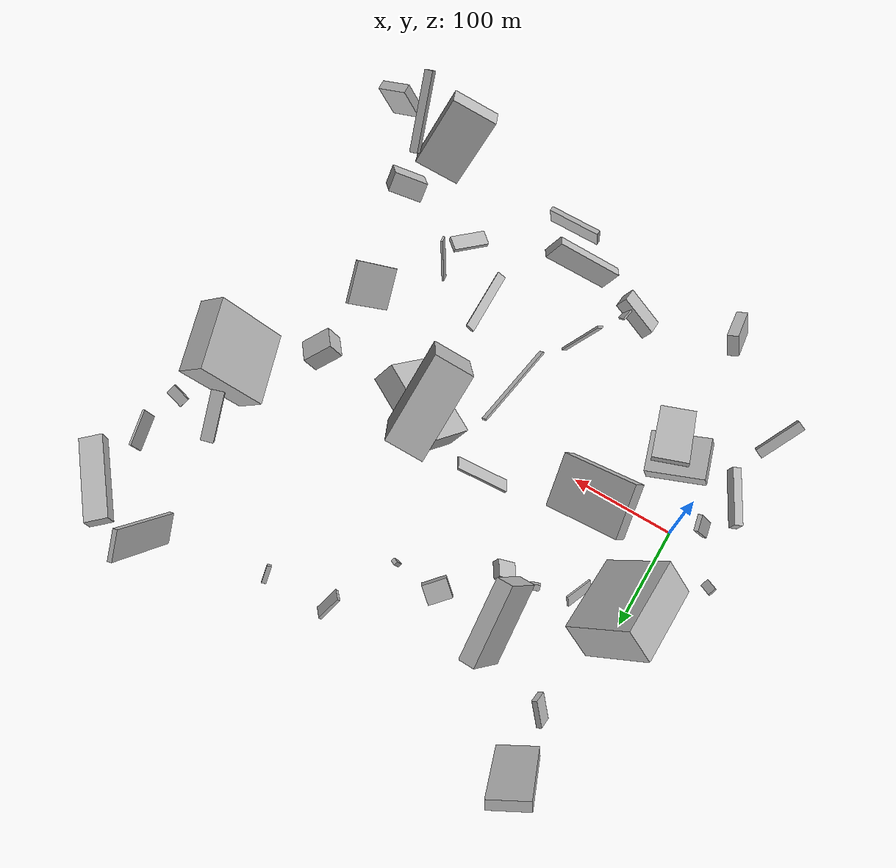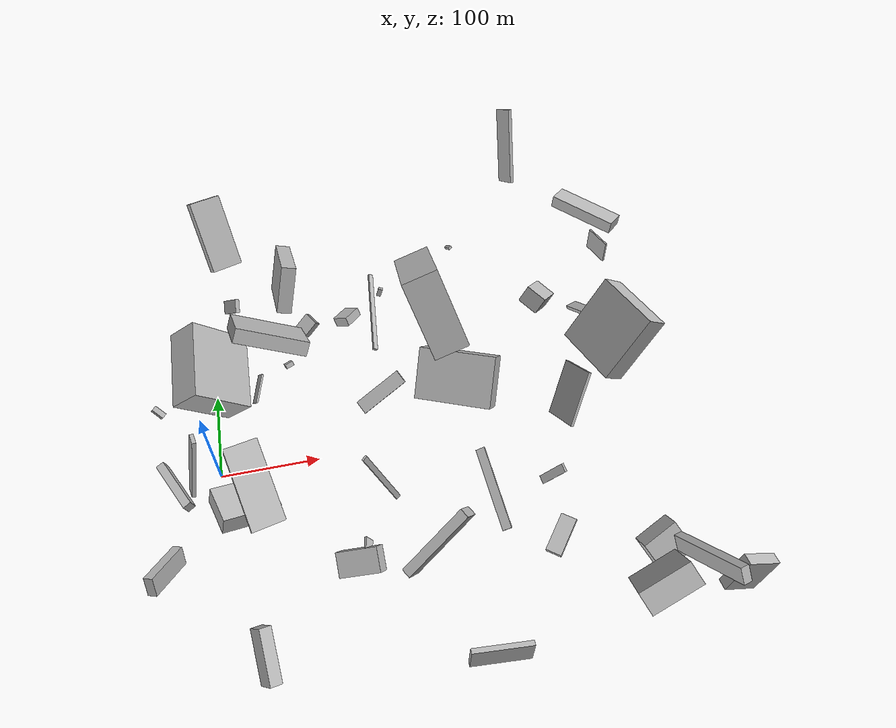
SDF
<sdf version="1.6">
 <world name="default">
  <scene>
   <sky><clouds><speed>12</speed></clouds></sky>
   <ambient>0.4 0.4 0.4 1</ambient>
   <background>0.7 0.7 0.7 1</background>
   <shadows>1</shadows>
  </scene>
  <gravity>0 0 -9.8066</gravity>
  <magnetic_field>6e-06 2.3e-05 -4.2e-05</magnetic_field>
  <physics default="0" name="default_physics" type="ode">
   <ode>
    <solver>
     <type>quick</type>
     <iters>10</iters>
     <sor>1.0</sor>
     <use_dynamic_moi_rescaling>0</use_dynamic_moi_rescaling>
    </solver>
    <constraints>
     <cfm>0</cfm>
     <erp>0.2</erp>
     <contact_max_correcting_vel>100</contact_max_correcting_vel>
     <contact_surface_layer>0.001</contact_surface_layer>
    </constraints>
   </ode>
   <max_step_size>0.004</max_step_size>
   <real_time_factor>1</real_time_factor>
   <real_time_update_rate>250</real_time_update_rate>
  </physics>
  <light name="sun" type="directional">
   <pose>0 0 10 0 0 0</pose>
   <diffuse>0.8 0.8 0.8 1</diffuse>
   <specular>0.2 0.2 0.2 1</specular>
   <attenuation>
    <range>1000</range>
    <constant>0.9</constant>
    <linear>0.01</linear>
    <quadratic>0.001</quadratic>
   </attenuation>
   <direction>-0.5 0.1 -0.9</direction>
  </light>
  <model name="building_1">
   <static>0</static>
   <pose>5.043533923179478 135.69928463617367 62.77792754016636 1.9820545724455532 0.8059594897771474 0.25880692947963047</pose>
   <link name="link">
    <gravity>0</gravity>
    <pose>0 0 40.0 0 0 0</pose>
    <collision name="collision"><geometry><box><size>69 37 80</size></box></geometry></collision>
    <visual name="visual">
     <cast_shadows>0</cast_shadows>
     <geometry><box><size>69 37 80</size></box></geometry>
     <material>
      <script>
       <uri>model://HANNAS_wall/materials/scripts</uri>
       <uri>model://HANNAS_wall/materials/textures</uri>
       <name>vrc/HANNAS_wall</name>
      </script>
     </material>
    </visual>
   </link>
  </model>
  <model name="building_2">
   <static>0</static>
   <pose>81.36062845633934 115.69970302888865 23.336245623334854 -3.02257329489 -0.6315082399561018 -1.2511206165916253</pose>
   <link name="link">
    <gravity>0</gravity>
    <pose>0 0 2.5 0 0 0</pose>
    <collision name="collision"><geometry><box><size>6 9 5</size></box></geometry></collision>
    <visual name="visual">
     <cast_shadows>0</cast_shadows>
     <geometry><box><size>6 9 5</size></box></geometry>
     <material>
      <script>
       <uri>model://HANNAS_wall/materials/scripts</uri>
       <uri>model://HANNAS_wall/materials/textures</uri>
       <name>vrc/HANNAS_wall</name>
      </script>
     </material>
    </visual>
   </link>
  </model>
  <model name="building_3">
   <static>0</static>
   <pose>231.98282962677126 89.92881862883257 133.1857693792348 1.0589481934119969 -0.2832644708366029 0.09236589014888316</pose>
   <link name="link">
    <gravity>0</gravity>
    <pose>0 0 40.0 0 0 0</pose>
    <collision name="collision"><geometry><box><size>35 80 80</size></box></geometry></collision>
    <visual name="visual">
     <cast_shadows>0</cast_shadows>
     <geometry><box><size>35 80 80</size></box></geometry>
     <material>
      <script>
       <uri>model://HANNAS_wall/materials/scripts</uri>
       <uri>model://HANNAS_wall/materials/textures</uri>
       <name>vrc/HANNAS_wall</name>
      </script>
     </material>
    </visual>
   </link>
  </model>
  <model name="building_4">
   <static>0</static>
   <pose>161.8370676321342 172.78837380957046 27.138792822671817 -1.391624029057196 0.4699380436886714 2.478890652858259</pose>
   <link name="link">
    <gravity>0</gravity>
    <pose>0 0 11.5 0 0 0</pose>
    <collision name="collision"><geometry><box><size>19 10 23</size></box></geometry></collision>
    <visual name="visual">
     <cast_shadows>0</cast_shadows>
     <geometry><box><size>19 10 23</size></box></geometry>
     <material>
      <script>
       <uri>model://HANNAS_wall/materials/scripts</uri>
       <uri>model://HANNAS_wall/materials/textures</uri>
       <name>vrc/HANNAS_wall</name>
      </script>
     </material>
    </visual>
   </link>
  </model>
  <model name="building_5">
   <static>0</static>
   <pose>460.1405584703814 244.21239928247988 58.09305680861413 -0.024033786427369558 -0.0988718930260388 -2.4095783627792633</pose>
   <link name="link">
    <gravity>0</gravity>
    <pose>0 0 7.0 0 0 0</pose>
    <collision name="collision"><geometry><box><size>22 80 14</size></box></geometry></collision>
    <visual name="visual">
     <cast_shadows>0</cast_shadows>
     <geometry><box><size>22 80 14</size></box></geometry>
     <material>
      <script>
       <uri>model://HANNAS_wall/materials/scripts</uri>
       <uri>model://HANNAS_wall/materials/textures</uri>
       <name>vrc/HANNAS_wall</name>
      </script>
     </material>
    </visual>
   </link>
  </model>
  <model name="building_6">
   <static>0</static>
   <pose>451.8086703279179 38.589455161437215 42.2233816821136 1.5911544475230883 0.944793499015564 -2.7845804027971903</pose>
   <link name="link">
    <gravity>0</gravity>
    <pose>0 0 37.0 0 0 0</pose>
    <collision name="collision"><geometry><box><size>80 31 74</size></box></geometry></collision>
    <visual name="visual">
     <cast_shadows>0</cast_shadows>
     <geometry><box><size>80 31 74</size></box></geometry>
     <material>
      <script>
       <uri>model://HANNAS_wall/materials/scripts</uri>
       <uri>model://HANNAS_wall/materials/textures</uri>
       <name>vrc/HANNAS_wall</name>
      </script>
     </material>
    </visual>
   </link>
  </model>
  <model name="building_7">
   <static>0</static>
   <pose>373.02908926795214 -235.24170015835924 74.09346149083615 1.1249450114512305 0.3939933483000093 -2.9218066426444764</pose>
   <link name="link">
    <gravity>0</gravity>
    <pose>0 0 10.0 0 0 0</pose>
    <collision name="collision"><geometry><box><size>48 80 20</size></box></geometry></collision>
    <visual name="visual">
     <cast_shadows>0</cast_shadows>
     <geometry><box><size>48 80 20</size></box></geometry>
     <material>
      <script>
       <uri>model://HANNAS_wall/materials/scripts</uri>
       <uri>model://HANNAS_wall/materials/textures</uri>
       <name>vrc/HANNAS_wall</name>
      </script>
     </material>
    </visual>
   </link>
  </model>
  <model name="building_8">
   <static>0</static>
   <pose>314.4078100448356 -156.45859817457733 39.59172818118581 1.6437639016218037 0.2346611555769126 -2.2545620504785204</pose>
   <link name="link">
    <gravity>0</gravity>
    <pose>0 0 7.5 0 0 0</pose>
    <collision name="collision"><geometry><box><size>37 5 15</size></box></geometry></collision>
    <visual name="visual">
     <cast_shadows>0</cast_shadows>
     <geometry><box><size>37 5 15</size></box></geometry>
     <material>
      <script>
       <uri>model://HANNAS_wall/materials/scripts</uri>
       <uri>model://HANNAS_wall/materials/textures</uri>
       <name>vrc/HANNAS_wall</name>
      </script>
     </material>
    </visual>
   </link>
  </model>
  <model name="building_9">
   <static>0</static>
   <pose>164.85702152472206 -171.42557560574576 69.13761863910247 -0.3417080693582522 -0.8956838746319423 -2.3187716805545566</pose>
   <link name="link">
    <gravity>0</gravity>
    <pose>0 0 36.5 0 0 0</pose>
    <collision name="collision"><geometry><box><size>22 9 73</size></box></geometry></collision>
    <visual name="visual">
     <cast_shadows>0</cast_shadows>
     <geometry><box><size>22 9 73</size></box></geometry>
     <material>
      <script>
       <uri>model://HANNAS_wall/materials/scripts</uri>
       <uri>model://HANNAS_wall/materials/textures</uri>
       <name>vrc/HANNAS_wall</name>
      </script>
     </material>
    </visual>
   </link>
  </model>
  <model name="building_10">
   <static>0</static>
   <pose>-33.40875659565695 -39.92361485129031 63.07394044617145 3.1259859162968593 0.25628276930274974 -2.6784859536755277</pose>
   <link name="link">
    <gravity>0</gravity>
    <pose>0 0 5.5 0 0 0</pose>
    <collision name="collision"><geometry><box><size>8 54 11</size></box></geometry></collision>
    <visual name="visual">
     <cast_shadows>0</cast_shadows>
     <geometry><box><size>8 54 11</size></box></geometry>
     <material>
      <script>
       <uri>model://HANNAS_wall/materials/scripts</uri>
       <uri>model://HANNAS_wall/materials/textures</uri>
       <name>vrc/HANNAS_wall</name>
      </script>
     </material>
    </visual>
   </link>
  </model>
  <model name="building_11">
   <static>0</static>
   <pose>335.9028935615647 -50.16799192605697 73.54929396278014 0.5890942706741199 -0.47374301949172826 3.1028213192396574</pose>
   <link name="link">
    <gravity>0</gravity>
    <pose>0 0 27.0 0 0 0</pose>
    <collision name="collision"><geometry><box><size>3 40 54</size></box></geometry></collision>
    <visual name="visual">
     <cast_shadows>0</cast_shadows>
     <geometry><box><size>3 40 54</size></box></geometry>
     <material>
      <script>
       <uri>model://HANNAS_wall/materials/scripts</uri>
       <uri>model://HANNAS_wall/materials/textures</uri>
       <name>vrc/HANNAS_wall</name>
      </script>
     </material>
    </visual>
   </link>
  </model>
  <model name="building_12">
   <static>0</static>
   <pose>171.16506904540313 21.596503625379032 188.6946796814204 2.9779163759649006 -0.5998100845622953 3.1240819678360814</pose>
   <link name="link">
    <gravity>0</gravity>
    <pose>0 0 1.0 0 0 0</pose>
    <collision name="collision"><geometry><box><size>4 80 2</size></box></geometry></collision>
    <visual name="visual">
     <cast_shadows>0</cast_shadows>
     <geometry><box><size>4 80 2</size></box></geometry>
     <material>
      <script>
       <uri>model://HANNAS_wall/materials/scripts</uri>
       <uri>model://HANNAS_wall/materials/textures</uri>
       <name>vrc/HANNAS_wall</name>
      </script>
     </material>
    </visual>
   </link>
  </model>
  <model name="building_13">
   <static>0</static>
   <pose>406.5682209097622 -187.75011537182033 26.299463461449967 -0.4810767663121852 0.7213109968894648 1.5953251590415405</pose>
   <link name="link">
    <gravity>0</gravity>
    <pose>0 0 16.5 0 0 0</pose>
    <collision name="collision"><geometry><box><size>20 35 33</size></box></geometry></collision>
    <visual name="visual">
     <cast_shadows>0</cast_shadows>
     <geometry><box><size>20 35 33</size></box></geometry>
     <material>
      <script>
       <uri>model://HANNAS_wall/materials/scripts</uri>
       <uri>model://HANNAS_wall/materials/textures</uri>
       <name>vrc/HANNAS_wall</name>
      </script>
     </material>
    </visual>
   </link>
  </model>
  <model name="building_14">
   <static>0</static>
   <pose>-48.594978401404845 43.618582989379725 62.587604959089624 2.1291158277348115 0.8189389142238362 -3.0772504029881826</pose>
   <link name="link">
    <gravity>0</gravity>
    <pose>0 0 4.0 0 0 0</pose>
    <collision name="collision"><geometry><box><size>2 13 8</size></box></geometry></collision>
    <visual name="visual">
     <cast_shadows>0</cast_shadows>
     <geometry><box><size>2 13 8</size></box></geometry>
     <material>
      <script>
       <uri>model://HANNAS_wall/materials/scripts</uri>
       <uri>model://HANNAS_wall/materials/textures</uri>
       <name>vrc/HANNAS_wall</name>
      </script>
     </material>
    </visual>
   </link>
  </model>
  <model name="building_15">
   <static>0</static>
   <pose>41.202030437284215 -60.52633870436539 71.0049978462809 2.595643870480532 -0.12762603803119027 -2.8391742651821037</pose>
   <link name="link">
    <gravity>0</gravity>
    <pose>0 0 2.0 0 0 0</pose>
    <collision name="collision"><geometry><box><size>33 80 4</size></box></geometry></collision>
    <visual name="visual">
     <cast_shadows>0</cast_shadows>
     <geometry><box><size>33 80 4</size></box></geometry>
     <material>
      <script>
       <uri>model://HANNAS_wall/materials/scripts</uri>
       <uri>model://HANNAS_wall/materials/textures</uri>
       <name>vrc/HANNAS_wall</name>
      </script>
     </material>
    </visual>
   </link>
  </model>
  <model name="building_16">
   <static>0</static>
   <pose>85.22492027321101 163.158705543406 72.908374937283 -0.2943058236519886 -0.4184759267878862 -1.4972587252417007</pose>
   <link name="link">
    <gravity>0</gravity>
    <pose>0 0 25.0 0 0 0</pose>
    <collision name="collision"><geometry><box><size>74 15 50</size></box></geometry></collision>
    <visual name="visual">
     <cast_shadows>0</cast_shadows>
     <geometry><box><size>74 15 50</size></box></geometry>
     <material>
      <script>
       <uri>model://HANNAS_wall/materials/scripts</uri>
       <uri>model://HANNAS_wall/materials/textures</uri>
       <name>vrc/HANNAS_wall</name>
      </script>
     </material>
    </visual>
   </link>
  </model>
  <model name="building_17">
   <static>0</static>
   <pose>454.5077748967809 183.2854115451541 51.9077820617821 0.14774517695582975 -0.09994009436053722 -2.9333295456616275</pose>
   <link name="link">
    <gravity>0</gravity>
    <pose>0 0 11.5 0 0 0</pose>
    <collision name="collision"><geometry><box><size>2 34 23</size></box></geometry></collision>
    <visual name="visual">
     <cast_shadows>0</cast_shadows>
     <geometry><box><size>2 34 23</size></box></geometry>
     <material>
      <script>
       <uri>model://HANNAS_wall/materials/scripts</uri>
       <uri>model://HANNAS_wall/materials/textures</uri>
       <name>vrc/HANNAS_wall</name>
      </script>
     </material>
    </visual>
   </link>
  </model>
  <model name="building_18">
   <static>0</static>
   <pose>102.96015245856452 123.64962411505115 61.09894344623199 0.24681077589731013 0.9373412765561187 0.7743620166268607</pose>
   <link name="link">
    <gravity>0</gravity>
    <pose>0 0 9.0 0 0 0</pose>
    <collision name="collision"><geometry><box><size>8 16 18</size></box></geometry></collision>
    <visual name="visual">
     <cast_shadows>0</cast_shadows>
     <geometry><box><size>8 16 18</size></box></geometry>
     <material>
      <script>
       <uri>model://HANNAS_wall/materials/scripts</uri>
       <uri>model://HANNAS_wall/materials/textures</uri>
       <name>vrc/HANNAS_wall</name>
      </script>
     </material>
    </visual>
   </link>
  </model>
  <model name="building_19">
   <static>0</static>
   <pose>344.8207585270714 65.7047892364829 127.57696877118718 0.5105597838461906 -0.9947180740584636 0.2587926838758716</pose>
   <link name="link">
    <gravity>0</gravity>
    <pose>0 0 14.0 0 0 0</pose>
    <collision name="collision"><geometry><box><size>17 21 28</size></box></geometry></collision>
    <visual name="visual">
     <cast_shadows>0</cast_shadows>
     <geometry><box><size>17 21 28</size></box></geometry>
     <material>
      <script>
       <uri>model://HANNAS_wall/materials/scripts</uri>
       <uri>model://HANNAS_wall/materials/textures</uri>
       <name>vrc/HANNAS_wall</name>
      </script>
     </material>
    </visual>
   </link>
  </model>
  <model name="building_20">
   <static>0</static>
   <pose>288.239817915733 226.47657259813198 53.083342706351246 2.6526223854176476 -0.7815052588886786 2.3273845550731083</pose>
   <link name="link">
    <gravity>0</gravity>
    <pose>0 0 9.0 0 0 0</pose>
    <collision name="collision"><geometry><box><size>3 4 18</size></box></geometry></collision>
    <visual name="visual">
     <cast_shadows>0</cast_shadows>
     <geometry><box><size>3 4 18</size></box></geometry>
     <material>
      <script>
       <uri>model://HANNAS_wall/materials/scripts</uri>
       <uri>model://HANNAS_wall/materials/textures</uri>
       <name>vrc/HANNAS_wall</name>
      </script>
     </material>
    </visual>
   </link>
  </model>
  <model name="building_21">
   <static>0</static>
   <pose>32.52630365730433 -75.8506226561071 36.946407573945145 1.6556563036355898 -0.28882730121139977 -2.8652985594429796</pose>
   <link name="link">
    <gravity>0</gravity>
    <pose>0 0 20.0 0 0 0</pose>
    <collision name="collision"><geometry><box><size>56 18 40</size></box></geometry></collision>
    <visual name="visual">
     <cast_shadows>0</cast_shadows>
     <geometry><box><size>56 18 40</size></box></geometry>
     <material>
      <script>
       <uri>model://HANNAS_wall/materials/scripts</uri>
       <uri>model://HANNAS_wall/materials/textures</uri>
       <name>vrc/HANNAS_wall</name>
      </script>
     </material>
    </visual>
   </link>
  </model>
  <model name="building_22">
   <static>0</static>
   <pose>432.5163636033585 -237.39693083290615 65.88946026152988 0.39631747736272227 0.09024462674508772 1.6297817506249845</pose>
   <link name="link">
    <gravity>0</gravity>
    <pose>0 0 18.5 0 0 0</pose>
    <collision name="collision"><geometry><box><size>10 33 37</size></box></geometry></collision>
    <visual name="visual">
     <cast_shadows>0</cast_shadows>
     <geometry><box><size>10 33 37</size></box></geometry>
     <material>
      <script>
       <uri>model://HANNAS_wall/materials/scripts</uri>
       <uri>model://HANNAS_wall/materials/textures</uri>
       <name>vrc/HANNAS_wall</name>
      </script>
     </material>
    </visual>
   </link>
  </model>
  <model name="building_23">
   <static>0</static>
   <pose>464.19448717112795 126.5527004751573 22.490130649489053 2.414463166036108 -0.9640025567961348 1.9948695072245548</pose>
   <link name="link">
    <gravity>0</gravity>
    <pose>0 0 5.5 0 0 0</pose>
    <collision name="collision"><geometry><box><size>3 19 11</size></box></geometry></collision>
    <visual name="visual">
     <cast_shadows>0</cast_shadows>
     <geometry><box><size>3 19 11</size></box></geometry>
     <material>
      <script>
       <uri>model://HANNAS_wall/materials/scripts</uri>
       <uri>model://HANNAS_wall/materials/textures</uri>
       <name>vrc/HANNAS_wall</name>
      </script>
     </material>
    </visual>
   </link>
  </model>
  <model name="building_24">
   <static>0</static>
   <pose>228.7795678143271 227.33513145901796 17.320806121658038 -2.5600404330782616 0.6523704391506792 -3.100399457797492</pose>
   <link name="link">
    <gravity>0</gravity>
    <pose>0 0 8.0 0 0 0</pose>
    <collision name="collision"><geometry><box><size>3 25 16</size></box></geometry></collision>
    <visual name="visual">
     <cast_shadows>0</cast_shadows>
     <geometry><box><size>3 25 16</size></box></geometry>
     <material>
      <script>
       <uri>model://HANNAS_wall/materials/scripts</uri>
       <uri>model://HANNAS_wall/materials/textures</uri>
       <name>vrc/HANNAS_wall</name>
      </script>
     </material>
    </visual>
   </link>
  </model>
  <model name="building_25">
   <static>0</static>
   <pose>193.3380916876338 165.84841899133406 58.874770902551745 -2.416111895925625 -1.1619443144999217 0.5183010357544621</pose>
   <link name="link">
    <gravity>0</gravity>
    <pose>0 0 2.0 0 0 0</pose>
    <collision name="collision"><geometry><box><size>9 5 4</size></box></geometry></collision>
    <visual name="visual">
     <cast_shadows>0</cast_shadows>
     <geometry><box><size>9 5 4</size></box></geometry>
     <material>
      <script>
       <uri>model://HANNAS_wall/materials/scripts</uri>
       <uri>model://HANNAS_wall/materials/textures</uri>
       <name>vrc/HANNAS_wall</name>
      </script>
     </material>
    </visual>
   </link>
  </model>
  <model name="building_26">
   <static>0</static>
   <pose>305.52260449974233 -97.64224918315084 49.08006159096257 -0.3945478673656703 -0.14998920284671233 -2.8563334346058284</pose>
   <link name="link">
    <gravity>0</gravity>
    <pose>0 0 23.5 0 0 0</pose>
    <collision name="collision"><geometry><box><size>2 8 47</size></box></geometry></collision>
    <visual name="visual">
     <cast_shadows>0</cast_shadows>
     <geometry><box><size>2 8 47</size></box></geometry>
     <material>
      <script>
       <uri>model://HANNAS_wall/materials/scripts</uri>
       <uri>model://HANNAS_wall/materials/textures</uri>
       <name>vrc/HANNAS_wall</name>
      </script>
     </material>
    </visual>
   </link>
  </model>
  <model name="building_27">
   <static>0</static>
   <pose>407.70245282944137 -227.69114349143973 93.20949082959721 -0.046250501855743587 -0.6943041781137337 -1.2770816607311328</pose>
   <link name="link">
    <gravity>0</gravity>
    <pose>0 0 7.5 0 0 0</pose>
    <collision name="collision"><geometry><box><size>80 8 15</size></box></geometry></collision>
    <visual name="visual">
     <cast_shadows>0</cast_shadows>
     <geometry><box><size>80 8 15</size></box></geometry>
     <material>
      <script>
       <uri>model://HANNAS_wall/materials/scripts</uri>
       <uri>model://HANNAS_wall/materials/textures</uri>
       <name>vrc/HANNAS_wall</name>
      </script>
     </material>
    </visual>
   </link>
  </model>
  <model name="building_28">
   <static>0</static>
   <pose>257.49047933828075 -97.67032926705696 50.3225716278255 2.643823688432159 -0.281256562564835 1.6738628349310996</pose>
   <link name="link">
    <gravity>0</gravity>
    <pose>0 0 1.0 0 0 0</pose>
    <collision name="collision"><geometry><box><size>80 9 2</size></box></geometry></collision>
    <visual name="visual">
     <cast_shadows>0</cast_shadows>
     <geometry><box><size>80 9 2</size></box></geometry>
     <material>
      <script>
       <uri>model://HANNAS_wall/materials/scripts</uri>
       <uri>model://HANNAS_wall/materials/textures</uri>
       <name>vrc/HANNAS_wall</name>
      </script>
     </material>
    </visual>
   </link>
  </model>
  <model name="building_29">
   <static>0</static>
   <pose>132.4750372535897 -150.83627438198988 75.51555126139912 1.7918676325341778 -0.8347847969910203 2.8064144232188544</pose>
   <link name="link">
    <gravity>0</gravity>
    <pose>0 0 7.5 0 0 0</pose>
    <collision name="collision"><geometry><box><size>8 2 15</size></box></geometry></collision>
    <visual name="visual">
     <cast_shadows>0</cast_shadows>
     <geometry><box><size>8 2 15</size></box></geometry>
     <material>
      <script>
       <uri>model://HANNAS_wall/materials/scripts</uri>
       <uri>model://HANNAS_wall/materials/textures</uri>
       <name>vrc/HANNAS_wall</name>
      </script>
     </material>
    </visual>
   </link>
  </model>
  <model name="building_30">
   <static>0</static>
   <pose>432.7548559147349 131.70501189514573 17.954367977662475 1.671611472794579 -0.560557612867237 -1.3233321528011603</pose>
   <link name="link">
    <gravity>0</gravity>
    <pose>0 0 6.5 0 0 0</pose>
    <collision name="collision"><geometry><box><size>52 4 13</size></box></geometry></collision>
    <visual name="visual">
     <cast_shadows>0</cast_shadows>
     <geometry><box><size>52 4 13</size></box></geometry>
     <material>
      <script>
       <uri>model://HANNAS_wall/materials/scripts</uri>
       <uri>model://HANNAS_wall/materials/textures</uri>
       <name>vrc/HANNAS_wall</name>
      </script>
     </material>
    </visual>
   </link>
  </model>
  <model name="building_31">
   <static>0</static>
   <pose>39.57986060417485 -201.64965419507826 29.43010610291404 -0.941107787251575 0.9152266842239445 2.379071732696944</pose>
   <link name="link">
    <gravity>0</gravity>
    <pose>0 0 5.5 0 0 0</pose>
    <collision name="collision"><geometry><box><size>22 48 11</size></box></geometry></collision>
    <visual name="visual">
     <cast_shadows>0</cast_shadows>
     <geometry><box><size>22 48 11</size></box></geometry>
     <material>
      <script>
       <uri>model://HANNAS_wall/materials/scripts</uri>
       <uri>model://HANNAS_wall/materials/textures</uri>
       <name>vrc/HANNAS_wall</name>
      </script>
     </material>
    </visual>
   </link>
  </model>
  <model name="building_32">
   <static>0</static>
   <pose>-22.29021893989696 -0.3932726386535794 36.9615723547133 1.292299712781867 0.27643853368792587 0.15940555757643735</pose>
   <link name="link">
    <gravity>0</gravity>
    <pose>0 0 7.5 0 0 0</pose>
    <collision name="collision"><geometry><box><size>4 66 15</size></box></geometry></collision>
    <visual name="visual">
     <cast_shadows>0</cast_shadows>
     <geometry><box><size>4 66 15</size></box></geometry>
     <material>
      <script>
       <uri>model://HANNAS_wall/materials/scripts</uri>
       <uri>model://HANNAS_wall/materials/textures</uri>
       <name>vrc/HANNAS_wall</name>
      </script>
     </material>
    </visual>
   </link>
  </model>
  <model name="building_33">
   <static>0</static>
   <pose>168.3208282936229 -90.16378453448469 53.63296565578352 0.2699099639568887 -0.20034533999499696 -0.9581808009861873</pose>
   <link name="link">
    <gravity>0</gravity>
    <pose>0 0 40.0 0 0 0</pose>
    <collision name="collision"><geometry><box><size>2 5 80</size></box></geometry></collision>
    <visual name="visual">
     <cast_shadows>0</cast_shadows>
     <geometry><box><size>2 5 80</size></box></geometry>
     <material>
      <script>
       <uri>model://HANNAS_wall/materials/scripts</uri>
       <uri>model://HANNAS_wall/materials/textures</uri>
       <name>vrc/HANNAS_wall</name>
      </script>
     </material>
    </visual>
   </link>
  </model>
  <model name="building_34">
   <static>0</static>
   <pose>71.0935444114763 50.0003405099845 137.22784020998756 0.5681357634272785 -0.429543987405725 3.0575136550322073</pose>
   <link name="link">
    <gravity>0</gravity>
    <pose>0 0 7.0 0 0 0</pose>
    <collision name="collision"><geometry><box><size>69 47 14</size></box></geometry></collision>
    <visual name="visual">
     <cast_shadows>0</cast_shadows>
     <geometry><box><size>69 47 14</size></box></geometry>
     <material>
      <script>
       <uri>model://HANNAS_wall/materials/scripts</uri>
       <uri>model://HANNAS_wall/materials/textures</uri>
       <name>vrc/HANNAS_wall</name>
      </script>
     </material>
    </visual>
   </link>
  </model>
  <model name="building_35">
   <static>0</static>
   <pose>44.52236793068563 96.28422152588487 11.10167872349352 2.5330452039740288 0.8118865293423367 2.323124235631476</pose>
   <link name="link">
    <gravity>0</gravity>
    <pose>0 0 1.0 0 0 0</pose>
    <collision name="collision"><geometry><box><size>10 32 2</size></box></geometry></collision>
    <visual name="visual">
     <cast_shadows>0</cast_shadows>
     <geometry><box><size>10 32 2</size></box></geometry>
     <material>
      <script>
       <uri>model://HANNAS_wall/materials/scripts</uri>
       <uri>model://HANNAS_wall/materials/textures</uri>
       <name>vrc/HANNAS_wall</name>
      </script>
     </material>
    </visual>
   </link>
  </model>
  <model name="building_36">
   <static>0</static>
   <pose>107.36467943372456 -147.53425825991084 58.30282386331837 0.9104344566592635 0.8510040788138667 0.7816943698505543</pose>
   <link name="link">
    <gravity>0</gravity>
    <pose>0 0 20.0 0 0 0</pose>
    <collision name="collision"><geometry><box><size>12 22 40</size></box></geometry></collision>
    <visual name="visual">
     <cast_shadows>0</cast_shadows>
     <geometry><box><size>12 22 40</size></box></geometry>
     <material>
      <script>
       <uri>model://HANNAS_wall/materials/scripts</uri>
       <uri>model://HANNAS_wall/materials/textures</uri>
       <name>vrc/HANNAS_wall</name>
      </script>
     </material>
    </visual>
   </link>
  </model>
  <model name="building_37">
   <static>0</static>
   <pose>-34.161093038787634 -98.29725154024624 36.928418525641185 1.103979255944884 -0.22437452188200346 -0.4008260540570135</pose>
   <link name="link">
    <gravity>0</gravity>
    <pose>0 0 23.0 0 0 0</pose>
    <collision name="collision"><geometry><box><size>9 18 46</size></box></geometry></collision>
    <visual name="visual">
     <cast_shadows>0</cast_shadows>
     <geometry><box><size>9 18 46</size></box></geometry>
     <material>
      <script>
       <uri>model://HANNAS_wall/materials/scripts</uri>
       <uri>model://HANNAS_wall/materials/textures</uri>
       <name>vrc/HANNAS_wall</name>
      </script>
     </material>
    </visual>
   </link>
  </model>
  <model name="building_38">
   <static>0</static>
   <pose>25.212643165427984 201.32224358675046 24.436455037202983 0.6294084922719444 0.6295138239942246 2.3491319772359107</pose>
   <link name="link">
    <gravity>0</gravity>
    <pose>0 0 7.5 0 0 0</pose>
    <collision name="collision"><geometry><box><size>26 5 15</size></box></geometry></collision>
    <visual name="visual">
     <cast_shadows>0</cast_shadows>
     <geometry><box><size>26 5 15</size></box></geometry>
     <material>
      <script>
       <uri>model://HANNAS_wall/materials/scripts</uri>
       <uri>model://HANNAS_wall/materials/textures</uri>
       <name>vrc/HANNAS_wall</name>
      </script>
     </material>
    </visual>
   </link>
  </model>
  <model name="building_39">
   <static>0</static>
   <pose>4.8941654715473675 261.87571124089243 89.02691915482714 1.8672787028042261 -0.951911776070944 1.82530859069542</pose>
   <link name="link">
    <gravity>0</gravity>
    <pose>0 0 18.0 0 0 0</pose>
    <collision name="collision"><geometry><box><size>80 9 36</size></box></geometry></collision>
    <visual name="visual">
     <cast_shadows>0</cast_shadows>
     <geometry><box><size>80 9 36</size></box></geometry>
     <material>
      <script>
       <uri>model://HANNAS_wall/materials/scripts</uri>
       <uri>model://HANNAS_wall/materials/textures</uri>
       <name>vrc/HANNAS_wall</name>
      </script>
     </material>
    </visual>
   </link>
  </model>
  <model name="building_40">
   <static>0</static>
   <pose>259.0771400843598 -238.60870717997577 13.984358886428243 -1.0826684604374792 -1.4228692193090244 1.03500343647088</pose>
   <link name="link">
    <gravity>0</gravity>
    <pose>0 0 28.0 0 0 0</pose>
    <collision name="collision"><geometry><box><size>23 5 56</size></box></geometry></collision>
    <visual name="visual">
     <cast_shadows>0</cast_shadows>
     <geometry><box><size>23 5 56</size></box></geometry>
     <material>
      <script>
       <uri>model://HANNAS_wall/materials/scripts</uri>
       <uri>model://HANNAS_wall/materials/textures</uri>
       <name>vrc/HANNAS_wall</name>
      </script>
     </material>
    </visual>
   </link>
  </model>
  <model name="building_41">
   <static>0</static>
   <pose>245.59305164323933 13.048352089129777 41.31052254199505 0.18663498726334077 -0.7744596051415253 -2.19176077732442</pose>
   <link name="link">
    <gravity>0</gravity>
    <pose>0 0 26.5 0 0 0</pose>
    <collision name="collision"><geometry><box><size>24 80 53</size></box></geometry></collision>
    <visual name="visual">
     <cast_shadows>0</cast_shadows>
     <geometry><box><size>24 80 53</size></box></geometry>
     <material>
      <script>
       <uri>model://HANNAS_wall/materials/scripts</uri>
       <uri>model://HANNAS_wall/materials/textures</uri>
       <name>vrc/HANNAS_wall</name>
      </script>
     </material>
    </visual>
   </link>
  </model>
  <model name="building_42">
   <static>0</static>
   <pose>359.22805389218905 251.96748174632825 120.26666790992549 -0.20189707701001772 -0.5005814438589198 -1.2530266604992182</pose>
   <link name="link">
    <gravity>0</gravity>
    <pose>0 0 40.0 0 0 0</pose>
    <collision name="collision"><geometry><box><size>26 4 80</size></box></geometry></collision>
    <visual name="visual">
     <cast_shadows>0</cast_shadows>
     <geometry><box><size>26 4 80</size></box></geometry>
     <material>
      <script>
       <uri>model://HANNAS_wall/materials/scripts</uri>
       <uri>model://HANNAS_wall/materials/textures</uri>
       <name>vrc/HANNAS_wall</name>
      </script>
     </material>
    </visual>
   </link>
  </model>
  <model name="building_43">
   <static>0</static>
   <pose>177.94031527991908 44.45845243759236 26.14530239412305 -1.0822847158916669 -0.5285752966881094 0.25204291234526477</pose>
   <link name="link">
    <gravity>0</gravity>
    <pose>0 0 7.5 0 0 0</pose>
    <collision name="collision"><geometry><box><size>55 2 15</size></box></geometry></collision>
    <visual name="visual">
     <cast_shadows>0</cast_shadows>
     <geometry><box><size>55 2 15</size></box></geometry>
     <material>
      <script>
       <uri>model://HANNAS_wall/materials/scripts</uri>
       <uri>model://HANNAS_wall/materials/textures</uri>
       <name>vrc/HANNAS_wall</name>
      </script>
     </material>
    </visual>
   </link>
  </model>
 </world>
</sdf>
